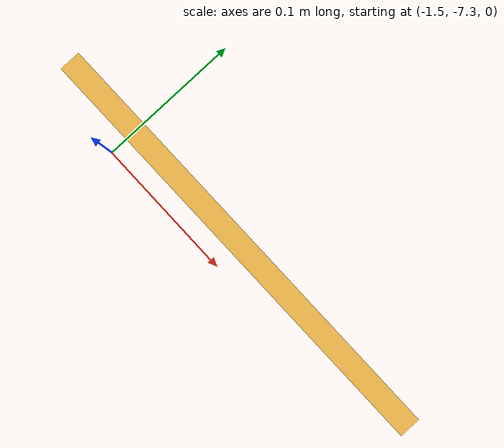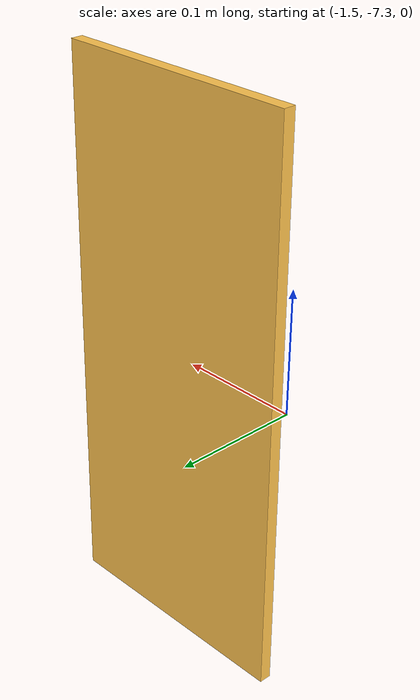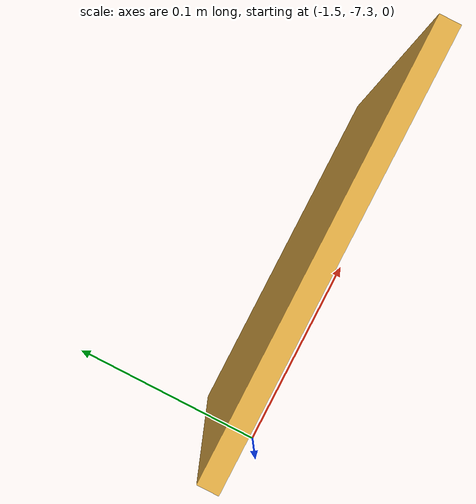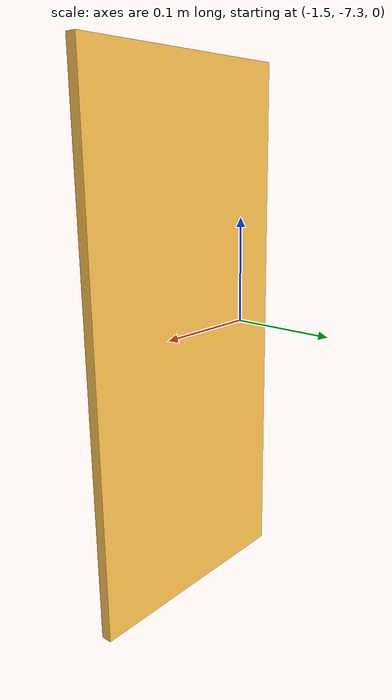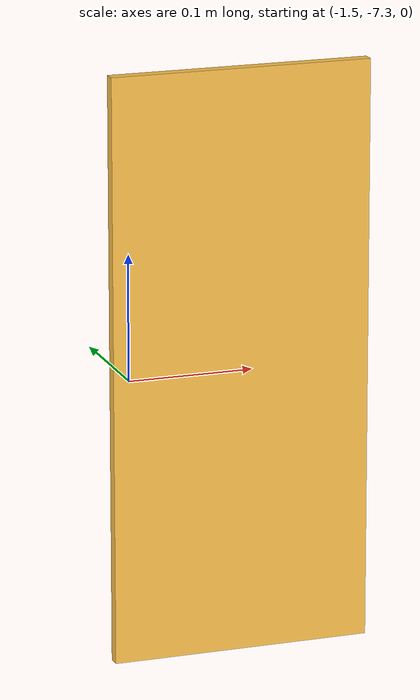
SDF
<?xml version='1.0'?>
<sdf version='1.6'>
  <model name='wall_short'>
    <pose frame=''>-1.40276 -7.28046 0 0 -0 0</pose>
    <link name='Wall_28'>
      <collision name='Wall_28_Collision'>
        <geometry>
          <box>
            <size>0.21 0.003 0.47</size>
          </box>
        </geometry>
        <pose frame=''>0 0 0 0 -0 0</pose>
      </collision>
      <visual name='Wall_28_Visual'>
        <pose frame=''>0 0 0 0 -0 0</pose>
        <geometry>
          <box>
            <size>0.21 0.01 0.47</size>
          </box>
        </geometry>
        <material>
          <script>
            <uri>file://media/materials/scripts/gazebo.material</uri>
            <name>Gazebo/Grey</name>
          </script>
          <ambient>1 0.764706 0.305882 1</ambient>
        </material>
        <meta>
          <layer>0</layer>
        </meta>
      </visual>
      <pose frame=''>0 0 0 0 -0 0</pose>
    </link>
    <static>1</static>
  </model>
</sdf>
